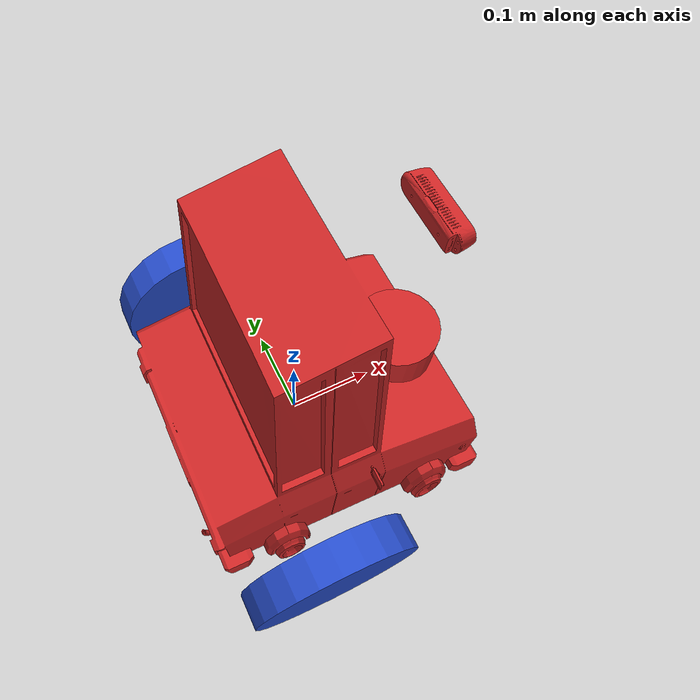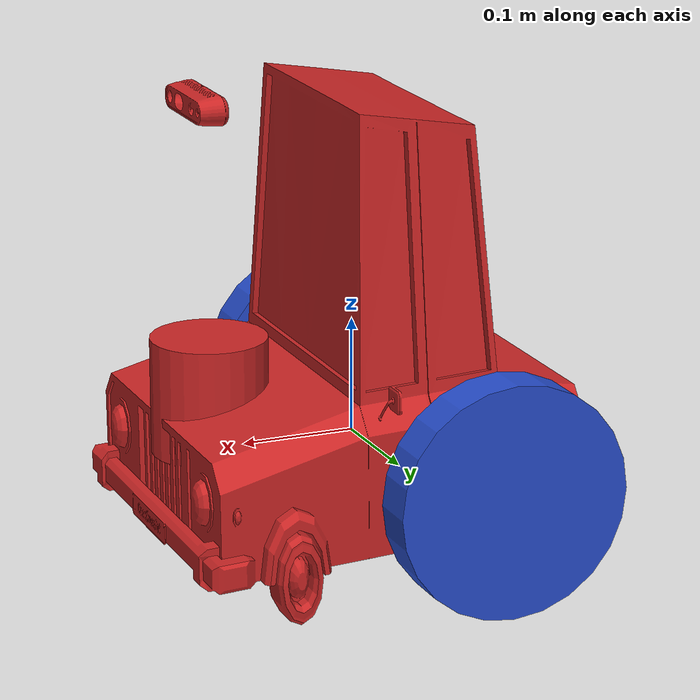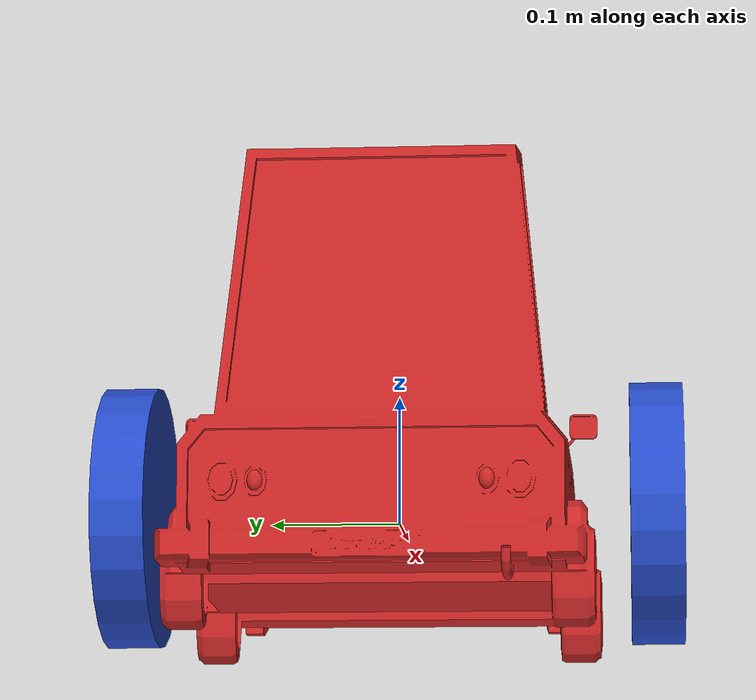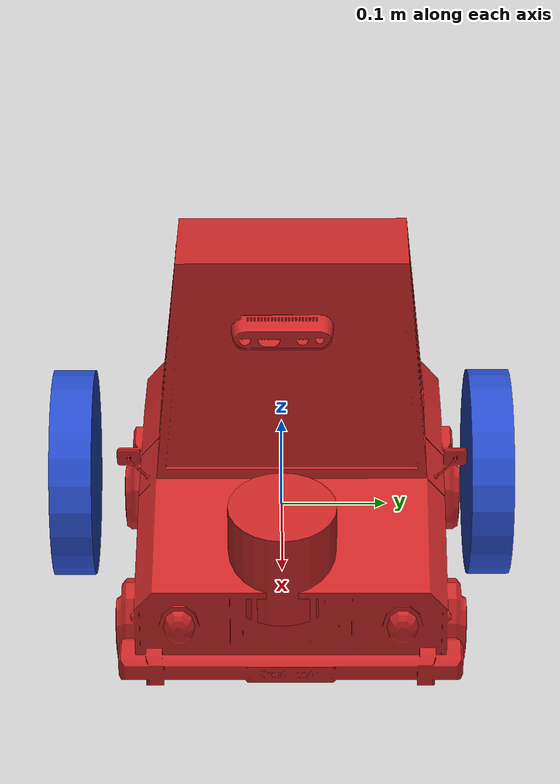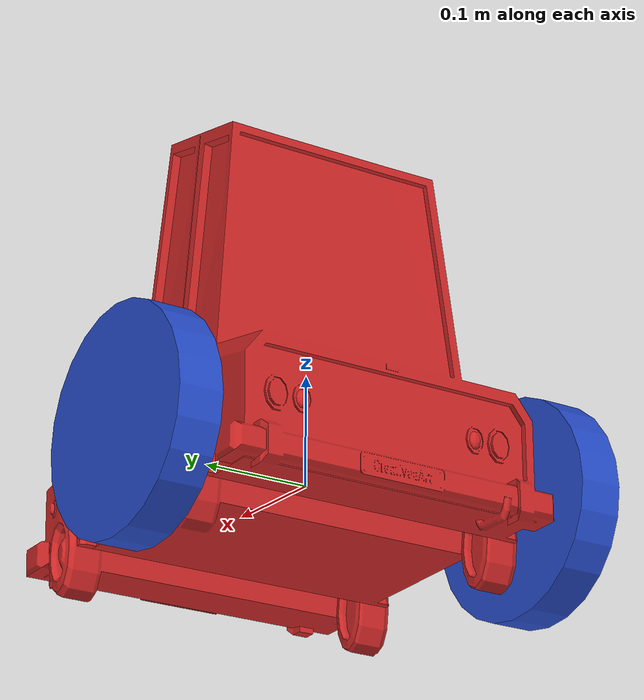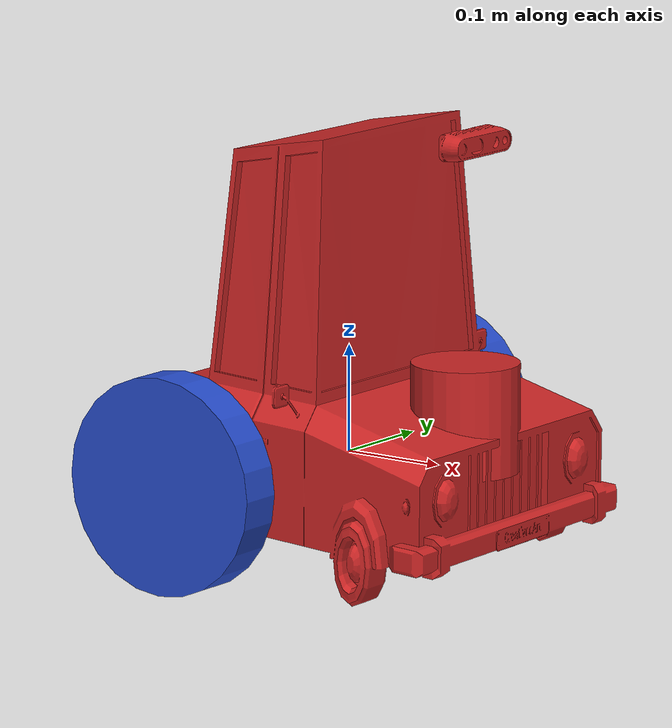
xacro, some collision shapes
<?xml version="1.0" ?>
<robot name="untamo" xmlns:xacro="http://www.ros.org/wiki/xacro">

  <xacro:arg name="nsp" default="robot0" />
  <xacro:arg name="tfpre" default="h0_tf" />

  <xacro:include filename="$(find untamo_description)/urdf/untamo.gazebo" />
  <xacro:include filename="$(find untamo_description)/urdf/materials.xacro" />
  <xacro:include filename="$(find untamo_description)/urdf/macros.xacro" />

  <xacro:property name="camera_link_size" value="0.05" /> <!-- Size of square 'camera' box -->
  <xacro:property name="M_PI" value="3.1415926535897931" />

  <xacro:property name="cam_px" value="-0.087" />
  <xacro:property name="cam_py" value="-0.0125"/>
  <xacro:property name="cam_pz" value="0.2870" />

  <xacro:property name="cam_or" value="0" />
  <xacro:property name="cam_op" value="0" />
  <xacro:property name="cam_oy" value="0" />

  <link name="$(arg nsp)_link_chassis">
    <!-- pose and inertial -->
    <pose>0 0 0.1 0 0 0</pose>
    <inertial>
      <mass value="5"/>
      <origin rpy="0 0 0" xyz="0 0 0."/>
      <inertia ixx="0.0395416666667" ixy="0" ixz="0" iyy="0.206208333333" iyz="0" izz="0.206208333333"/>
    </inertial>

    <visual>
      <origin xyz="0 0 0.3" rpy="0 0 0" />
      <geometry>
        <mesh filename="package://untamo_description/meshes/car_c.dae" scale="1 1.5 2"/>
      </geometry>
      <material name="red" />
    </visual>

    <!-- body -->
    <collision name="collision_chassis">
      <geometry>
        <box size="0.35 0.3 0.07"/>
      </geometry>
    </collision>

    <!-- caster front -->
    <collision name="caster_front_collision">
      <origin rpy=" 0 0 0" xyz="0.20 0 -0.045"/>
      <geometry>
        <sphere radius="0.05"/>
      </geometry>
      <surface>
        <friction>
          <ode>
            <mu>0</mu>
            <mu2>0</mu2>
            <slip1>1.0</slip1>
            <slip2>1.0</slip2>
          </ode>
        </friction>
      </surface>
    </collision>
    <!-- caster back-->
    <collision name="caster_back_collision">
      <origin rpy=" 0 0 0" xyz="-0.20 0 -0.05"/>
      <geometry>
        <sphere radius="0.05"/>
      </geometry>
      <surface>
        <friction>
          <ode>
            <mu>0</mu>
            <mu2>0</mu2>
            <slip1>1.0</slip1>
            <slip2>1.0</slip2>
          </ode>
        </friction>
      </surface>
    </collision>
  </link>

  <!-- Camera link-->
  <link name="$(arg nsp)_camera_link">
    <collision>
      <origin xyz="0 0 0" rpy="0 0 0"/>
      <geometry>
        <box size="${camera_link_size} ${camera_link_size} ${camera_link_size}"/>
      </geometry>
    </collision>

    <inertial>
      <mass value="1e-5" />
      <origin xyz="0 0 0" rpy="0 0 0"/>
      <inertia ixx="1e-6" ixy="0" ixz="0" iyy="1e-6" iyz="0" izz="1e-6" />
    </inertial>
  </link>

  <!-- generate an optical frame http://www.ros.org/reps/rep-0103.html#suffix-frames
      so that ros and opencv can operate on the camera frame correctly -->
  <joint name="$(arg nsp)_camera_optical_joint" type="fixed">
    <!-- these values have to be these values otherwise the gazebo camera image
        won't be aligned properly with the frame it is supposedly originating from -->
    <origin xyz="0 0 0" rpy="${-pi/2} 0 ${-pi/2}"/>
    <parent link="$(arg nsp)_camera_link"/>
    <child link="$(arg nsp)_camera_link_optical"/>
  </joint>

  <link name="$(arg nsp)_camera_link_optical">
  </link>

  <!-- Camera joint-->
  <joint name="$(arg nsp)_camera_joint" type="fixed">
    <axis xyz="0 1 0" />
    <origin xyz="0.15 0 0.3" rpy="0 0 0"/>
    <parent link="$(arg nsp)_link_chassis"/>
    <child link="$(arg nsp)_camera_link"/>
  </joint>

  <!-- Modelos para la kinect-->

  <link name="$(arg nsp)_sensor_realsense">
    <inertial>
      <origin xyz="0 0 0" rpy="0 0 0" />
      <mass value="0.1" />
      <xacro:cylinder_inertia mass="0.1" r="0.05" l="0.1" />
    </inertial>

    <visual>
      <origin xyz="0 0 0" rpy="${M_PI/2} 0 ${M_PI/2}" />
      <geometry>
        <mesh filename="package://untamo_description/meshes/realsense.dae"/>
      </geometry>
      <material name="red" />
    </visual>

    <collision>
      <origin xyz="0 0 0" rpy="0 0 0"/>
      <geometry>
        <cylinder radius="0.05" length="0.1"/>
      </geometry>
    </collision>
  </link>

  <!-- Kinect sensor joint-->
  <joint name="$(arg nsp)_joint_sensor_kinect" type="fixed">
    <origin xyz="0.15 0 0.3" rpy="0 0 0"/>
    <parent link="$(arg nsp)_link_chassis"/>
    <child link="$(arg nsp)_sensor_realsense"/>
  </joint>

  <joint name="$(arg nsp)_camera_depth_joint" type="fixed">
    <origin xyz="0.15 0 0.3" rpy="0 0 0" />
    <parent link="$(arg nsp)_link_chassis" />
    <child link="$(arg nsp)_camera_depth_frame" />
  </joint>
  <link name="$(arg nsp)_camera_depth_frame"/>

  <joint name="$(arg nsp)_camera_depth_optical_joint" type="fixed">
    <origin xyz="0 0 0" rpy="${-M_PI/2} 0 ${-M_PI/2}" />
    <parent link="$(arg nsp)_camera_depth_frame" />
    <child link="$(arg nsp)_camera_depth_optical_frame" />
  </joint>
  <link name="$(arg nsp)_camera_depth_optical_frame"/>

  <!-- Laser sensor link-->
  <link name="$(arg nsp)_sensor_laser">
    <inertial>
      <origin xyz="0 0 0" rpy="0 0 0" />
      <mass value="0.1" />
      <xacro:cylinder_inertia mass="0.1" r="0.05" l="0.1" />
    </inertial>

    <visual>
      <origin xyz="0 0 0" rpy="0 0 0" />
      <geometry>
        <!--cylinder radius="0.05" length="0.1"/-->
        <mesh filename="package://untamo_description/meshes/hokuyo.dae"/>
      </geometry>
      <material name="red" />
    </visual>

    <collision>
      <origin xyz="0 0 0" rpy="0 0 0"/>
      <geometry>
        <cylinder radius="0.05" length="0.1"/>
      </geometry>
    </collision>
  </link>

  <joint name="$(arg nsp)_joint_sensor_laser" type="fixed">
    <origin xyz="0.13 0 0.05" rpy="0 0 0"/>
    <parent link="$(arg nsp)_link_chassis"/>
    <child link="$(arg nsp)_sensor_laser"/>
  </joint>

  <!-- dummy load link-->
  <link name="$(arg nsp)_dummy">
    <inertial>
      <origin xyz="0 0 0" rpy="0 0 0" />
      <mass value="5" />
      <xacro:cylinder_inertia mass="0.1" r="0.05" l="0.1" />
    </inertial>
  </link>

  <joint name="$(arg nsp)_joint_dummy" type="fixed">
    <origin xyz="-0.13 0 0.05" rpy="0 0 0"/>
    <parent link="$(arg nsp)_link_chassis"/>
    <child link="$(arg nsp)_dummy"/>
  </joint>

  <xacro:link_wheel name="$(arg nsp)_link_right_wheel" />
  <xacro:joint_wheel name="$(arg nsp)_joint_right_wheel" child="$(arg nsp)_link_right_wheel" origin_xyz="-0.05 -0.20 0" />

  <xacro:link_wheel name="$(arg nsp)_link_left_wheel" />
  <xacro:joint_wheel name="$(arg nsp)_joint_left_wheel" child="$(arg nsp)_link_left_wheel" origin_xyz="-0.05 0.20 0" />
</robot>

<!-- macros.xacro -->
<robot xmlns:xacro="http://www.ros.org/wiki/xacro">
    <xacro:macro name="link_wheel" params="name">
        <link name="${name}">
            <inertial>
              <mass value="0.2"/>
              <origin rpy="0 1.5707 1.5707" xyz="0 0 0"/>
              <inertia ixx="0.000526666666667" ixy="0" ixz="0" iyy="0.000526666666667" iyz="0" izz="0.001"/>
            </inertial>
            <collision name="link_right_wheel_collision">
              <origin rpy="0 1.5707 1.5707" xyz="0 0 0"/>
              <geometry>
                <cylinder length="0.04" radius="0.1"/>
              </geometry>
            </collision>
            <visual name="${name}_visual">
              <origin rpy="0 1.5707 1.5707" xyz="0 0 0"/>
              <geometry>
                <cylinder length="0.04" radius="0.1"/>
              </geometry>
            </visual>
        </link>
    </xacro:macro>

    <xacro:macro name="joint_wheel" params="name child origin_xyz">
      <joint name="${name}" type="continuous">
        <origin rpy="0 0 0" xyz="${origin_xyz}"/>
        <child link="${child}"/>
        <parent link="$(arg nsp)_link_chassis"/>
        <axis rpy="0 0 0" xyz="0 1 0"/>
        <limit effort="10" velocity="10"/>
        <joint_properties damping="1.0" friction="1.0"/>
      </joint>
    </xacro:macro>

    <xacro:macro name="cylinder_inertia" params="mass r l">
      <inertia  ixx="${mass*(3*r*r+l*l)/12}" ixy = "0" ixz = "0"
                iyy="${mass*(3*r*r+l*l)/12}" iyz = "0"
                izz="${mass*(r*r)/2}" />
    </xacro:macro>
</robot>
